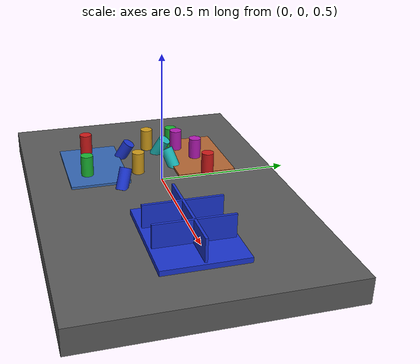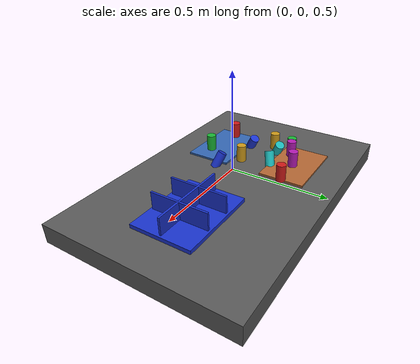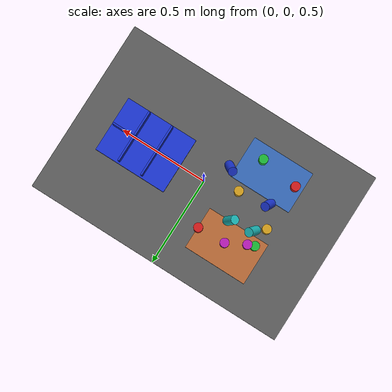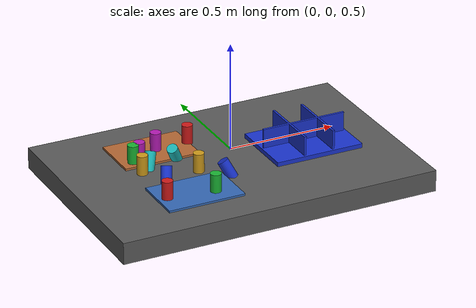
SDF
<?xml version="1.0" ?>
<sdf version="1.9">
  <!-- Standalone M1B scene.  The controller-backed Panda is spawned by the
       existing launch path; this file never alters the frozen M1A cube world. -->
  <world name="industrial_cylinder_v1">
    <physics name="bullet" type="bullet"><max_step_size>0.001</max_step_size><real_time_factor>1.0</real_time_factor></physics>
    <plugin name="gz::sim::systems::Physics" filename="gz-sim-physics-system"><engine><filename>gz-physics-bullet-featherstone-plugin</filename></engine></plugin>
    <plugin name="gz::sim::systems::UserCommands" filename="gz-sim-user-commands-system"/>
    <plugin name="gz::sim::systems::SceneBroadcaster" filename="gz-sim-scene-broadcaster-system"/>
    <plugin name="gz::sim::systems::Sensors" filename="gz-sim-sensors-system"><render_engine>ogre2</render_engine></plugin>
    <gravity>0 0 -9.81</gravity>
    <light type="directional" name="industrial_light"><pose>0 0 5 0 0 0</pose><direction>-0.3 0.2 -0.9</direction><diffuse>0.9 0.9 0.9 1</diffuse></light>
    <model name="industrial_work_table"><static>true</static><link name="link"><pose>0 0 0.4 0 0 0</pose><collision name="collision"><geometry><box><size>1.5 1.0 0.1</size></box></geometry></collision><visual name="visual"><geometry><box><size>1.5 1.0 0.1</size></box></geometry><material><diffuse>0.35 0.35 0.35 1</diffuse></material></visual></link></model>
    <model name="camera_fixture"><static>true</static><link name="camera_rgbd"><pose>-0.80 -0.80 1.40 0 0.77 0.93</pose><sensor name="front_rgbd" type="rgbd_camera"><always_on>1</always_on><update_rate>15</update_rate><topic>/xh/camera/rgbd</topic><camera><horizontal_fov>1.047</horizontal_fov><image><width>640</width><height>480</height><format>R8G8B8</format></image><clip><near>0.1</near><far>4.0</far></clip></camera></sensor></link></model>
    <model name="incoming_zone_a"><static>true</static><link name="link"><pose>-0.28 -0.22 0.455 0 0 0</pose><visual name="visual"><geometry><box><size>0.36 0.24 0.01</size></box></geometry><material><diffuse>0.2 0.4 0.7 1</diffuse></material></visual></link></model>
    <model name="incoming_zone_b"><static>true</static><link name="link"><pose>-0.28 0.22 0.455 0 0 0</pose><visual name="visual"><geometry><box><size>0.36 0.24 0.01</size></box></geometry><material><diffuse>0.7 0.4 0.2 1</diffuse></material></visual></link></model>
    <!-- M1B_RANDOM_PARTS_BEGIN -->
    <model name="cylinder_01"><pose>-0.4168 -0.2295 0.5000 0.0000 0.0000 -2.5436</pose><link name="link"><inertial><mass>0.06</mass></inertial><collision name="collision"><geometry><cylinder><radius>0.025</radius><length>0.09</length></cylinder></geometry></collision><visual name="visual"><geometry><cylinder><radius>0.025</radius><length>0.09</length></cylinder></geometry><material><diffuse>0.800 0.100 0.100 1</diffuse><specular>0.15 0.15 0.15 1</specular></material></visual></link></model>
    <model name="cylinder_02"><pose>-0.4036 0.1447 0.5000 3.1416 0.0000 1.6204</pose><link name="link"><inertial><mass>0.06</mass></inertial><collision name="collision"><geometry><cylinder><radius>0.025</radius><length>0.09</length></cylinder></geometry></collision><visual name="visual"><geometry><cylinder><radius>0.025</radius><length>0.09</length></cylinder></geometry><material><diffuse>0.100 0.700 0.200 1</diffuse><specular>0.15 0.15 0.15 1</specular></material></visual></link></model>
    <model name="cylinder_03"><pose>-0.3491 -0.0770 0.4800 0.4500 -0.3000 -3.0334</pose><link name="link"><inertial><mass>0.06</mass></inertial><collision name="collision"><geometry><cylinder><radius>0.025</radius><length>0.09</length></cylinder></geometry></collision><visual name="visual"><geometry><cylinder><radius>0.025</radius><length>0.09</length></cylinder></geometry><material><diffuse>0.100 0.200 0.800 1</diffuse><specular>0.15 0.15 0.15 1</specular></material></visual></link></model>
    <model name="cylinder_04"><pose>-0.4093 0.0376 0.5000 0.0000 0.0000 1.3799</pose><link name="link"><inertial><mass>0.06</mass></inertial><collision name="collision"><geometry><cylinder><radius>0.025</radius><length>0.09</length></cylinder></geometry></collision><visual name="visual"><geometry><cylinder><radius>0.025</radius><length>0.09</length></cylinder></geometry><material><diffuse>0.800 0.600 0.100 1</diffuse><specular>0.15 0.15 0.15 1</specular></material></visual></link></model>
    <model name="cylinder_05"><pose>-0.2617 0.2147 0.5000 3.1416 0.0000 1.2106</pose><link name="link"><inertial><mass>0.06</mass></inertial><collision name="collision"><geometry><cylinder><radius>0.025</radius><length>0.09</length></cylinder></geometry></collision><visual name="visual"><geometry><cylinder><radius>0.025</radius><length>0.09</length></cylinder></geometry><material><diffuse>0.700 0.100 0.700 1</diffuse><specular>0.15 0.15 0.15 1</specular></material></visual></link></model>
    <model name="cylinder_06"><pose>-0.3529 0.0838 0.4800 0.4500 -0.3000 3.0309</pose><link name="link"><inertial><mass>0.06</mass></inertial><collision name="collision"><geometry><cylinder><radius>0.025</radius><length>0.09</length></cylinder></geometry></collision><visual name="visual"><geometry><cylinder><radius>0.025</radius><length>0.09</length></cylinder></geometry><material><diffuse>0.100 0.700 0.700 1</diffuse><specular>0.15 0.15 0.15 1</specular></material></visual></link></model>
    <model name="cylinder_07"><pose>-0.1043 0.2208 0.5000 0.0000 0.0000 -0.2562</pose><link name="link"><inertial><mass>0.06</mass></inertial><collision name="collision"><geometry><cylinder><radius>0.025</radius><length>0.09</length></cylinder></geometry></collision><visual name="visual"><geometry><cylinder><radius>0.025</radius><length>0.09</length></cylinder></geometry><material><diffuse>0.800 0.100 0.100 1</diffuse><specular>0.15 0.15 0.15 1</specular></material></visual></link></model>
    <model name="cylinder_08"><pose>-0.2011 -0.2600 0.5000 3.1416 0.0000 0.9333</pose><link name="link"><inertial><mass>0.06</mass></inertial><collision name="collision"><geometry><cylinder><radius>0.025</radius><length>0.09</length></cylinder></geometry></collision><visual name="visual"><geometry><cylinder><radius>0.025</radius><length>0.09</length></cylinder></geometry><material><diffuse>0.100 0.700 0.200 1</diffuse><specular>0.15 0.15 0.15 1</specular></material></visual></link></model>
    <model name="cylinder_09"><pose>-0.0808 -0.1343 0.4800 0.4500 -0.3000 -1.6479</pose><link name="link"><inertial><mass>0.06</mass></inertial><collision name="collision"><geometry><cylinder><radius>0.025</radius><length>0.09</length></cylinder></geometry></collision><visual name="visual"><geometry><cylinder><radius>0.025</radius><length>0.09</length></cylinder></geometry><material><diffuse>0.100 0.200 0.800 1</diffuse><specular>0.15 0.15 0.15 1</specular></material></visual></link></model>
    <model name="cylinder_10"><pose>-0.1813 -0.0521 0.5000 0.0000 0.0000 -1.8978</pose><link name="link"><inertial><mass>0.06</mass></inertial><collision name="collision"><geometry><cylinder><radius>0.025</radius><length>0.09</length></cylinder></geometry></collision><visual name="visual"><geometry><cylinder><radius>0.025</radius><length>0.09</length></cylinder></geometry><material><diffuse>0.800 0.600 0.100 1</diffuse><specular>0.15 0.15 0.15 1</specular></material></visual></link></model>
    <model name="cylinder_11"><pose>-0.3667 0.1589 0.5000 3.1416 0.0000 2.1311</pose><link name="link"><inertial><mass>0.06</mass></inertial><collision name="collision"><geometry><cylinder><radius>0.025</radius><length>0.09</length></cylinder></geometry></collision><visual name="visual"><geometry><cylinder><radius>0.025</radius><length>0.09</length></cylinder></geometry><material><diffuse>0.700 0.100 0.700 1</diffuse><specular>0.15 0.15 0.15 1</specular></material></visual></link></model>
    <model name="cylinder_12"><pose>-0.2248 0.0980 0.4800 0.4500 -0.3000 -0.3999</pose><link name="link"><inertial><mass>0.06</mass></inertial><collision name="collision"><geometry><cylinder><radius>0.025</radius><length>0.09</length></cylinder></geometry></collision><visual name="visual"><geometry><cylinder><radius>0.025</radius><length>0.09</length></cylinder></geometry><material><diffuse>0.100 0.700 0.700 1</diffuse><specular>0.15 0.15 0.15 1</specular></material></visual></link></model>
    <!-- M1B_RANDOM_PARTS_END -->
    <model name="blue_partition_bin"><static>true</static><pose>0.36 0 0.45 0 0 0</pose><link name="link"><collision name="floor"><pose>0 0 0.01 0 0 0</pose><geometry><box><size>0.42 0.32 0.02</size></box></geometry></collision><visual name="floor_visual"><pose>0 0 0.01 0 0 0</pose><geometry><box><size>0.42 0.32 0.02</size></box></geometry><material><diffuse>0.1 0.2 0.8 1</diffuse></material></visual><visual name="row_divider"><pose>0 0 0.06 0 0 0</pose><geometry><box><size>0.40 0.01 0.10</size></box></geometry><material><diffuse>0.1 0.2 0.8 1</diffuse></material></visual><visual name="col_divider_a"><pose>-0.07 0 0.06 0 0 0</pose><geometry><box><size>0.01 0.30 0.10</size></box></geometry><material><diffuse>0.1 0.2 0.8 1</diffuse></material></visual><visual name="col_divider_b"><pose>0.07 0 0.06 0 0 0</pose><geometry><box><size>0.01 0.30 0.10</size></box></geometry><material><diffuse>0.1 0.2 0.8 1</diffuse></material></visual></link></model>
    <!-- Reserved only: second table, bin transport corridor, stackable-bin
         collision volume, and second arm mounting namespace. -->
  </world>
</sdf>
